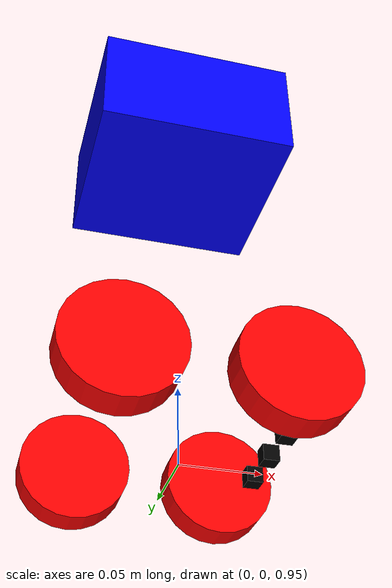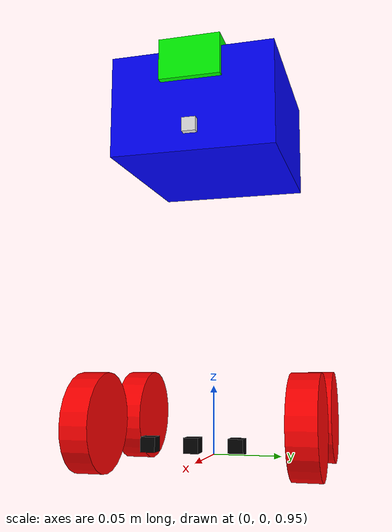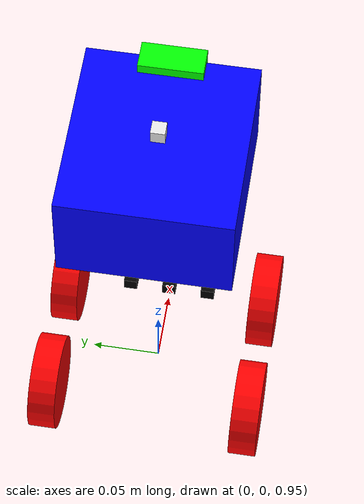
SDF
<sdf version="1.6">
<model name='adeept_awr' canonical_link='chassis'>
    <pose>0 0 1 0 0 0</pose>
        <link name='chassis'>
        <pose relative_to='__model__'>0 0 0.2 0 0 0</pose>

        <inertial>
            <mass>2</mass>
            <inertia>
                <ixx>0.0033375</ixx>
                <iyy>0.0042042</iyy>
                <izz>0.0056667</izz>
            </inertia>
        </inertial>

        <visual name='visual'>
            <geometry>
                <box>
                    <size>0.13 0.12 0.075</size>
                </box>
            </geometry>
            <material>
                <ambient>0.0 0.0 1.0 1</ambient>
                <diffuse>0.0 0.0 1.0 1</diffuse>
                <specular>0.0 0.0 1.0 1</specular>
            </material>
        </visual>
        <collision name='collision'>
            <geometry>
                <box>
                    <size>0.14 0.12 0.075</size>
                </box>
            </geometry>
        </collision>
        </link>

        <link name='camera'>
            <pose relative_to='chassis'>0.06 0 0.03 0 0 0</pose>
            <inertial>
                <mass>0.01</mass>
                <inertia>
                    <ixx>2.4375e-06</ixx>
                    <iyy>1.084e-06</iyy>
                    <izz>2.0208e-06</izz>
                </inertia>
            </inertial>
            <visual name='visual'>
                <geometry>
                    <box>
                        <size>0.02 0.045 0.03</size>
                    </box>
                </geometry>
                <material>
                    <ambient>0.0 1.0 0.0 1</ambient>
                    <diffuse>0.0 1.0 0.0 1</diffuse>
                    <specular>0.0 1.0 0.0 1</specular>
                </material>
            </visual>
            <collision name='collision'>
                <geometry>
                    <box>
                        <size>0.02 0.045 0.03</size>
                    </box>
                </geometry>
            </collision>

            <sensor name='camera' type='camera'>
                <topic>simulator_camera</topic>
                <update_rate>30</update_rate>
                <camera name='__default__'>
                    <horizontal_fov>1.0469999999999999</horizontal_fov>
                    <image>
                        <width>960</width>
                        <height>540</height>
                        <format>RGB_INT8</format>
                    </image>
                    <clip>
                        <near>0.01</near>
                        <far>100</far>
                    </clip>
                    <visibility_mask>4294967295</visibility_mask>
                    <lens>
                        <type>stereographic</type>
                        <scale_to_hfov>true</scale_to_hfov>
                        <cutoff_angle>1.5708</cutoff_angle>
                        <env_texture_size>256</env_texture_size>
                    </lens>
                </camera>
            </sensor>
        </link>

        <joint name='camera_servo_joint' type='revolute'>
            <pose relative_to='camera'/>
            <parent>chassis</parent>
            <child>camera</child>
            <axis>
                <xyz>0 1 0</xyz>
                <limit>
                    <lower>-1.57076</lower>
                    <upper>0.1745</upper>
                </limit>
                <effort>
                    <min>-10</min>
                    <max>10</max>
                </effort>
            </axis>
        </joint>

        <plugin name="ignition::gazebo::systems::JointController" filename="libignition-gazebo-joint-controller-system.so">
            <joint_name>camera_servo_joint</joint_name>
        </plugin>

        <link name='lidar'>
            <pose relative_to='chassis'>0 0 0.0425 0 0 0</pose>
            <inertial>
                <mass>0.05</mass>
                <inertia>
                    <ixx>8.3333e-07</ixx>
                    <iyy>8.3333e-07</iyy>
                    <izz>8.3333e-07</izz>
                  </inertia>
            </inertial>
            <visual name='visual'>
                <geometry>
                  <box>
                    <size>0.01 0.01 0.01</size>
                  </box>
                </geometry>
                <material>
                    <ambient>0.9 0.9 0.9 1</ambient>
                    <diffuse>0.9 0.9 0.9 1</diffuse>
                    <specular>0.9 0.9 0.9 1</specular>
                </material>
              </visual>
            <collision name='collision'>
              <geometry>
                <box>
                  <size>0.01 0.01 0.01</size>
                </box>
              </geometry>
            </collision>

            <sensor name='gpu_lidar' type='gpu_lidar'>
              <topic>simulator_lidar</topic>
              <update_rate>20</update_rate>
              <lidar>
                <scan>
                  <horizontal>
                    <samples>360</samples>
                    <resolution>1</resolution>
                    <min_angle>-3.14</min_angle>
                    <max_angle>3.14</max_angle>
                  </horizontal>

                  <vertical>
                    <samples>1</samples>
                    <resolution>1</resolution>
                    <min_angle>0</min_angle>
                    <max_angle>0</max_angle>
                  </vertical>
                </scan>
                <range>
                  <min>0.08</min>
                  <max>10</max>
                  <resolution>0.01</resolution>
                </range>
                <noise>
                  <type>none</type>
                  <mean>0</mean>
                  <stddev>0</stddev>
                </noise>
                <visibility_mask>4294967295</visibility_mask>
              </lidar>
            </sensor>
            <enable_wind>false</enable_wind>
          </link>

          <joint name='lidar_joint' type='fixed'>
            <pose relative_to="lidar"/>
            <parent>chassis</parent>
            <child>lidar</child>
          </joint>

          <link name='ultrasonic'>
            <pose relative_to='chassis'>0.065 0 -0.02 0 0 0</pose>
            <inertial>
                <mass>0.01</mass>
                <inertia>
                  <ixx>1.6666e-07</ixx>
                  <iyy>1.6666e-07</iyy>
                  <izz>1.6666e-07</izz>
                </inertia>
            </inertial>
            <visual name='visual'>
                <geometry>
                  <box>
                    <size>0.01 0.01 0.01</size>
                  </box>
                </geometry>
                <material>
                    <ambient>0.9 0.9 0.9 1</ambient>
                    <diffuse>0.9 0.9 0.9 1</diffuse>
                    <specular>0.9 0.9 0.9 1</specular>
                </material>
              </visual>
            <collision name='collision'>
              <geometry>
                <box>
                  <size>0.01 0.01 0.01</size>
                </box>
              </geometry>
            </collision>

            <sensor name='gpu_lidar' type='gpu_lidar'>
              <pose relative_to="ultrasonic">0 0 0 0 0 0</pose>
              <topic>simulator_ultrasonic</topic>
              <update_rate>20</update_rate>
              <lidar>
                <scan>
                  <horizontal>
                    <samples>3</samples>
                    <resolution>1</resolution>
                    <min_angle>-0.1308</min_angle>
                    <max_angle>0.1308</max_angle>
                  </horizontal>
                  <vertical>
                    <samples>1</samples>
                    <resolution>1</resolution>
                    <min_angle>0</min_angle>
                    <max_angle>0</max_angle>
                  </vertical>
                </scan>
                <range>
                  <min>0.02</min>
                  <max>4</max>
                  <resolution>0.01</resolution>
                </range>
                <noise>
                  <type>none</type>
                  <mean>0</mean>
                  <stddev>0</stddev>
                </noise>
                <visibility_mask>4294967295</visibility_mask>
              </lidar>
            </sensor>
            <enable_wind>false</enable_wind>
          </link>

          <joint name='ultrasonic_joint' type='fixed'>
            <pose relative_to="ultrasonic"/>
            <parent>chassis</parent>
            <child>ultrasonic</child>
          </joint>

        <include>
          <name>left</name>
          <uri>model://models/line_tracking.sdf</uri>
          <pose relative_to='chassis'>0.055 0.03 -0.0375 0 1.57 0</pose>
        </include>

        <joint name='line_tracking_left_joint' type='fixed'>
            <pose relative_to='left'/>
            <parent>chassis</parent>
            <child>left::line_tracking</child>
        </joint>

        <include>
          <name>middle</name>
          <uri>model://models/line_tracking.sdf</uri>
          <pose relative_to='chassis'>0.055 0 -0.0375 0 1.57 0</pose>
        </include>

        <joint name='line_tracking_middle_joint' type='fixed'>
            <pose relative_to='middle'/>
            <parent>chassis</parent>
            <child>middle::line_tracking</child>
        </joint>

        <include>
          <name>right</name>
          <uri>model://models/line_tracking.sdf</uri>
          <pose relative_to='chassis'>0.055 -0.03 -0.0375 0 1.57 0</pose>
        </include>

        <joint name='line_tracking_right_joint' type='fixed'>
            <pose relative_to='right'/>
            <parent>chassis</parent>
            <child>right::line_tracking</child>
        </joint>

        <include>
            <name>left_front_wheel</name>
            <uri>model://models/wheel.sdf</uri>
            <pose relative_to="chassis">0.045 0.075 -0.025 -1.5707 0 0</pose>
        </include>

        <joint name='left_front_wheel_joint' type='revolute'>
            <pose relative_to='left_front_wheel'/>
            <parent>chassis</parent>
            <child>left_front_wheel::wheel</child>
            <axis>
                <xyz>0 0 1</xyz>
                <limit>
                    <lower>-1.79769e+308</lower>
                    <upper>1.79769e+308</upper>
                </limit>
            </axis>
        </joint>

        <include>
            <name>right_front_wheel</name>
            <uri>model://models/wheel.sdf</uri>
            <pose relative_to="chassis">0.045 -0.075 -0.025 -1.5707 0 0</pose>
        </include>

        <joint name='right_front_wheel_joint' type='revolute'>
            <pose relative_to='right_front_wheel'/>
            <parent>chassis</parent>
            <child>right_front_wheel::wheel</child>
            <axis>
                <xyz>0 0 1</xyz>
                <limit>
                    <lower>-1.79769e+308</lower>
                    <upper>1.79769e+308</upper>
                </limit>
            </axis>
        </joint>

        <include>
            <name>left_rear_wheel</name>
            <uri>model://models/wheel.sdf</uri>
            <pose relative_to="chassis">-0.05 0.075 -0.025 -1.5707 0 0</pose>
        </include>

        <joint name='left_rear_wheel_joint' type='revolute'>
            <pose relative_to='left_rear_wheel'/>
            <parent>chassis</parent>
            <child>left_rear_wheel::wheel</child>
            <axis>
                <xyz>0 0 1</xyz>
                <limit>
                    <lower>-1.79769e+308</lower>
                    <upper>1.79769e+308</upper>
                </limit>
            </axis>
        </joint>

        <include>
            <name>right_rear_wheel</name>
            <uri>model://models/wheel.sdf</uri>
            <pose relative_to="chassis">-0.05 -0.075 -0.025 -1.5707 0 0</pose>
        </include>

        <joint name='right_rear_wheel_joint' type='revolute'>
            <pose relative_to='right_rear_wheel'/>
            <parent>chassis</parent>
            <child>right_rear_wheel::wheel</child>
            <axis>
                <xyz>0 0 1</xyz>
                <limit>
                    <lower>-1.79769e+308</lower>
                    <upper>1.79769e+308</upper>
                </limit>
            </axis>
        </joint>

    <plugin name='ignition::gazebo::systems::DiffDrive' filename='libignition-gazebo-diff-drive-system.so'>
        <left_joint>left_front_wheel_joint</left_joint>
        <right_joint>right_front_wheel_joint</right_joint>
        <wheel_separation>0.15</wheel_separation>
        <wheel_radius>0.035</wheel_radius>
        <odom_publish_frequency>1</odom_publish_frequency>
    </plugin>

    <plugin name='ignition::gazebo::systems::DiffDrive' filename='libignition-gazebo-diff-drive-system.so'>
        <left_joint>left_rear_wheel_joint</left_joint>
        <right_joint>right_rear_wheel_joint</right_joint>
        <wheel_separation>0.15</wheel_separation>
        <wheel_radius>0.035</wheel_radius>
        <odom_publish_frequency>1</odom_publish_frequency>
    </plugin>

</model>
</sdf>

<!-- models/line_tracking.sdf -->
<sdf version="1.6">
    <model name="line_tracking">
        <link name="line_tracking">
            <inertial>
                <mass>0.001</mass>
                <inertia>
                    <ixx>1.6666e-08</ixx>
                    <iyy>1.6666e-08</iyy>
                    <izz>1.6666e-08</izz>
                </inertia>
            </inertial>
            <visual name='visual'>
                <geometry>
                    <box>
                        <size>0.01 0.01 0.01</size>
                    </box>
                </geometry>
                <material>
                    <ambient>0 0 0.0 1</ambient>
                    <diffuse>0 0 0.0 1</diffuse>
                    <specular>0 0 0.0 1</specular>
                </material>
            </visual>
            <collision name='collision'>
                <geometry>
                    <box>
                        <size>0.01 0.01 0.01</size>
                    </box>
                </geometry>
            </collision>

            <sensor name='camera' type='camera'>
                <topic>line_tracking</topic>
                <update_rate>10</update_rate>
                <camera name='__default__'>
                    <horizontal_fov>0.11</horizontal_fov>
                    <image>
                        <width>1</width>
                        <height>1</height>
                        <format>RGB_INT8</format>
                    </image>
                    <clip>
                        <near>0.01</near>
                        <far>100</far>
                    </clip>
                </camera>
            </sensor>
        </link>
    </model>
</sdf>

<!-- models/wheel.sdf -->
<!-- Generic Wheel -->

<sdf version="1.6">
    <model name="wheel">
        <link name="wheel">
            <inertial>
                <mass>0.05</mass>
                <inertia>
                    <ixx>2.60416667e-06</ixx>
                    <iyy>2.60416667e-06</iyy>
                    <izz>8.68055556e-07</izz>
                </inertia>
            </inertial>
            <visual name='visual'>
                <geometry>
                    <cylinder>
                        <radius>0.035</radius>
                        <length>0.02</length>
                    </cylinder>
                </geometry>
                <material>
                    <ambient>1.0 0.0 0.0 1</ambient>
                    <diffuse>1.0 0.0 0.0 1</diffuse>
                    <specular>1.0 0.0 0.0 1</specular>
                </material>
            </visual>
            <collision name='collision'>
                <geometry>
                    <cylinder>
                        <radius>0.035</radius>
                        <length>0.02</length>
                    </cylinder>
                </geometry>
            </collision>
        </link>
    </model>
</sdf>
